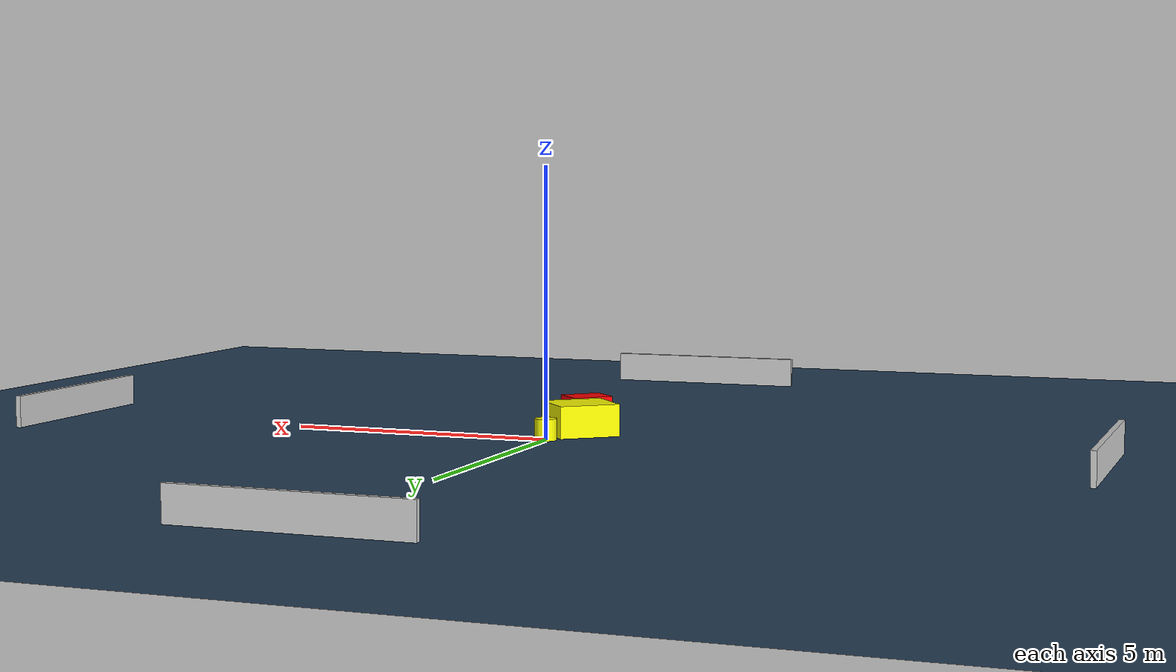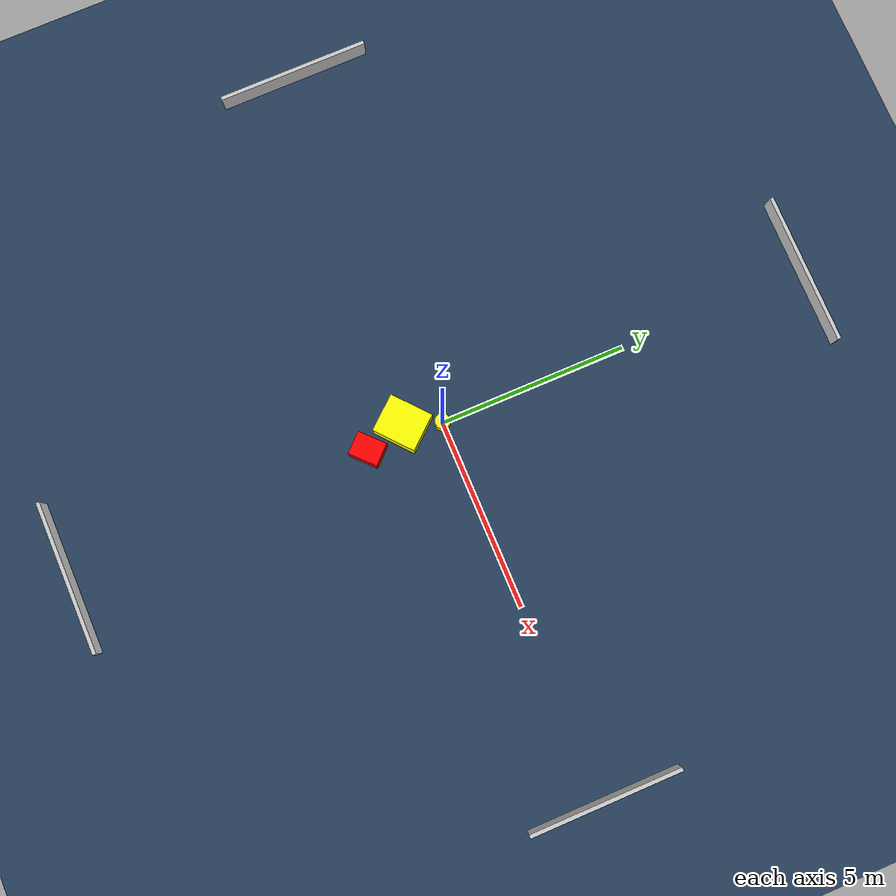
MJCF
<?xml version="1.0" ?>
<mujoco model="generated_environment">
  <option timestep="0.01" integrator="RK4" cone="elliptic"/>
  <default>
    <geom density="1"/>
  </default>
  <asset>
    <texture builtin="gradient" height="3072" name="skybox" rgb1="0.3 0.5 0.7" rgb2="0 0 0" type="skybox" width="512"/>
    <texture builtin="checker" height="300" name="groundplane" rgb1="0.2 0.3 0.4" rgb2="0.1 0.2 0.3" type="2d" width="300"/>
    <material name="groundplane" reflectance="0.2" texrepeat="5 5" texture="groundplane"/>
  </asset>
  <worldbody>
    <light dir="0 0 -1" directional="true" pos="0 0 1.5"/>
    <geom condim="3" friction="0.5 0.005 0.001" material="groundplane" name="floor" pos="0 0 0" size="0 0 0.05" type="plane"/>
    <body name="walls">
      <geom name="wall_1" condim="4" pos="-10.0 0.0 0.3" rgba="0.800000011920929 0.800000011920929 0.800000011920929 1.0" size="0.05 2.0 0.3" type="box"/>
      <geom name="wall_2" condim="4" pos="10.0 0.0 0.3" rgba="0.800000011920929 0.800000011920929 0.800000011920929 1.0" size="0.05 2.0 0.3" type="box"/>
      <geom name="wall_3" condim="4" pos="0.0 -10.0 0.3" rgba="0.800000011920929 0.800000011920929 0.800000011920929 1.0" size="2.0 0.05 0.3" type="box"/>
      <geom name="wall_4" condim="4" pos="0.0 10.0 0.3" rgba="0.800000011920929 0.800000011920929 0.800000011920929 1.0" size="2.0 0.05 0.3" type="box"/>
    </body>
    <body name="robot">
      <joint name="joint_x" type="slide" pos="0 0 0" axis="1 0 0"/>
      <joint name="joint_y" type="slide" pos="0 0 0" axis="0 1 0"/>
      <geom name="robot" type="cylinder" pos="0.0 0.0 0.2" size="0.2 0.2 0.0" mass="5.0" friction="1.0 0.005 0.0001" condim="4" rgba="1.0 1.0 0.0 1.0"/>
    </body>
    <body name="obstacle_1_movable">
      <geom name="obstacle_1_movable" condim="4" pos="-0.33178721376071346 -0.9434600337568058 0.3" euler="0 0 130.62216100596916" friction="0.0 0.005 0.001" rgba="1.0 1.0 0.0 1.0" size="0.5081952056409429 0.5798819949754452 0.3" type="box" mass="0.1"/>
      <joint type="free"/>
    </body>
    <body name="obstacle_2_static">
      <geom name="obstacle_2_static" condim="4" pos="-0.06737283761637888 -1.9969892697254061 0.3" euler="0 0 223.63637628611932" friction="0.0 0.005 0.001" rgba="1.0 0.0 0.0 1.0" size="0.3917906176362873 0.3074744597468183 0.3" type="box"/>
    </body>
  </worldbody>
  <actuator>
    <motor name="actuator_x" joint="joint_x" gear="1" ctrlrange="-1 1"/>
    <motor name="actuator_y" joint="joint_y" gear="1" ctrlrange="-1 1"/>
  </actuator>
</mujoco>
